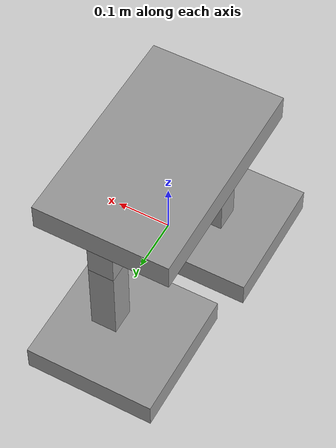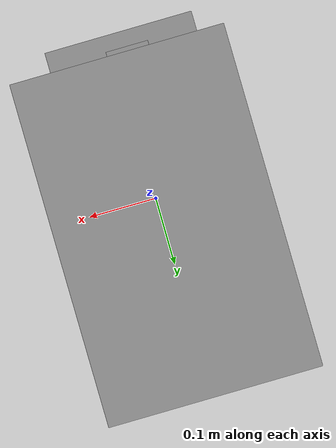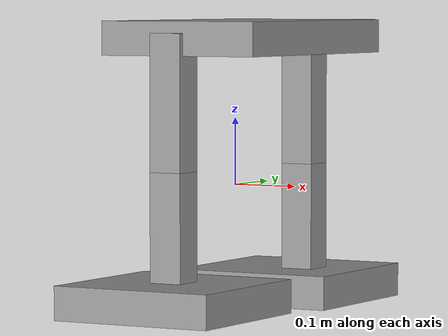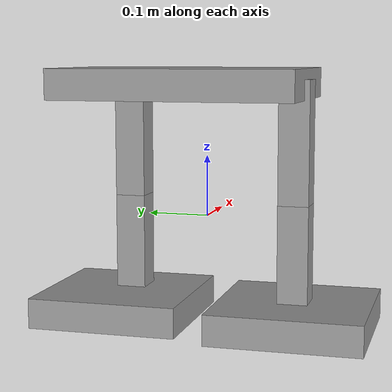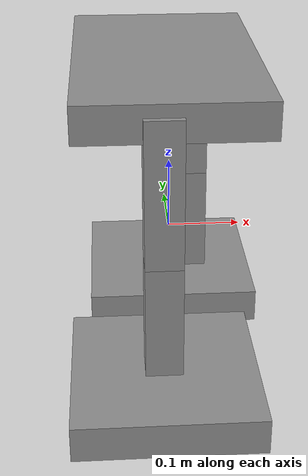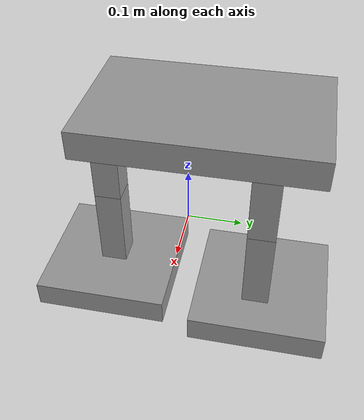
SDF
<?xml version='1.0'?>
<sdf version='1.6'>
  <model name='robot2'>
    <link name='link_0'>
      <inertial>
        <mass>1</mass>
        <inertia>
          <ixx>0.166667</ixx>
          <ixy>0</ixy>
          <ixz>0</ixz>
          <iyy>0.166667</iyy>
          <iyz>0</iyz>
          <izz>0.166667</izz>
        </inertia>
        <pose frame=''>0 0 0 0 -0 0</pose>
      </inertial>
      <pose frame=''>-0.015553 -0.153642 -0.158199 0 -0 0</pose>
      <gravity>1</gravity>
      <self_collide>0</self_collide>
      <kinematic>0</kinematic>
      <enable_wind>0</enable_wind>
      <visual name='visual'>
        <pose frame=''>0 0 0 0 -0 0</pose>
        <geometry>
          <box>
            <size>0.25 0.25 0.05</size>
          </box>
        </geometry>
        <material>
          <lighting>1</lighting>
          <script>
            <uri>file://media/materials/scripts/gazebo.material</uri>
            <name>Gazebo/Grey</name>
          </script>
          <shader type='vertex'>
            <normal_map>__default__</normal_map>
          </shader>
          <ambient>0.3 0.3 0.3 1</ambient>
          <diffuse>0.7 0.7 0.7 1</diffuse>
          <specular>0.01 0.01 0.01 1</specular>
          <emissive>0 0 0 1</emissive>
        </material>
        <transparency>0</transparency>
        <cast_shadows>1</cast_shadows>
      </visual>
      <collision name='collision'>
        <laser_retro>0</laser_retro>
        <max_contacts>10</max_contacts>
        <pose frame=''>0 0 0 0 -0 0</pose>
        <geometry>
          <box>
            <size>0.25 0.25 0.05</size>
          </box>
        </geometry>
        <surface>
          <friction>
            <ode>
              <mu>1</mu>
              <mu2>1</mu2>
              <fdir1>0 0 0</fdir1>
              <slip1>0</slip1>
              <slip2>0</slip2>
            </ode>
            <torsional>
              <coefficient>1</coefficient>
              <patch_radius>0</patch_radius>
              <surface_radius>0</surface_radius>
              <use_patch_radius>1</use_patch_radius>
              <ode>
                <slip>0</slip>
              </ode>
            </torsional>
          </friction>
          <bounce>
            <restitution_coefficient>0</restitution_coefficient>
            <threshold>1e+06</threshold>
          </bounce>
          <contact>
            <collide_without_contact>0</collide_without_contact>
            <collide_without_contact_bitmask>1</collide_without_contact_bitmask>
            <collide_bitmask>1</collide_bitmask>
            <ode>
              <soft_cfm>0</soft_cfm>
              <soft_erp>0.2</soft_erp>
              <kp>1e+13</kp>
              <kd>1</kd>
              <max_vel>0.01</max_vel>
              <min_depth>0</min_depth>
            </ode>
            <bullet>
              <split_impulse>1</split_impulse>
              <split_impulse_penetration_threshold>-0.01</split_impulse_penetration_threshold>
              <soft_cfm>0</soft_cfm>
              <soft_erp>0.2</soft_erp>
              <kp>1e+13</kp>
              <kd>1</kd>
            </bullet>
          </contact>
        </surface>
      </collision>
    </link>
    <link name='link_0_clone'>
      <inertial>
        <mass>1</mass>
        <inertia>
          <ixx>0.166667</ixx>
          <ixy>0</ixy>
          <ixz>0</ixz>
          <iyy>0.166667</iyy>
          <iyz>0</iyz>
          <izz>0.166667</izz>
        </inertia>
        <pose frame=''>0 0 0 0 -0 0</pose>
      </inertial>
      <pose frame=''>0.010018 0.150043 -0.158199 0 -0 0</pose>
      <gravity>1</gravity>
      <self_collide>0</self_collide>
      <kinematic>0</kinematic>
      <enable_wind>0</enable_wind>
      <visual name='visual'>
        <pose frame=''>0 0 0 0 -0 0</pose>
        <geometry>
          <box>
            <size>0.25 0.25 0.05</size>
          </box>
        </geometry>
        <material>
          <lighting>1</lighting>
          <script>
            <uri>file://media/materials/scripts/gazebo.material</uri>
            <name>Gazebo/Grey</name>
          </script>
          <shader type='vertex'>
            <normal_map>__default__</normal_map>
          </shader>
          <ambient>0.3 0.3 0.3 1</ambient>
          <diffuse>0.7 0.7 0.7 1</diffuse>
          <specular>0.01 0.01 0.01 1</specular>
          <emissive>0 0 0 1</emissive>
        </material>
        <transparency>0</transparency>
        <cast_shadows>1</cast_shadows>
      </visual>
      <collision name='collision'>
        <laser_retro>0</laser_retro>
        <max_contacts>10</max_contacts>
        <pose frame=''>0 0 0 0 -0 0</pose>
        <geometry>
          <box>
            <size>0.25 0.25 0.05</size>
          </box>
        </geometry>
        <surface>
          <friction>
            <ode>
              <mu>1</mu>
              <mu2>1</mu2>
              <fdir1>0 0 0</fdir1>
              <slip1>0</slip1>
              <slip2>0</slip2>
            </ode>
            <torsional>
              <coefficient>1</coefficient>
              <patch_radius>0</patch_radius>
              <surface_radius>0</surface_radius>
              <use_patch_radius>1</use_patch_radius>
              <ode>
                <slip>0</slip>
              </ode>
            </torsional>
          </friction>
          <bounce>
            <restitution_coefficient>0</restitution_coefficient>
            <threshold>1e+06</threshold>
          </bounce>
          <contact>
            <collide_without_contact>0</collide_without_contact>
            <collide_without_contact_bitmask>1</collide_without_contact_bitmask>
            <collide_bitmask>1</collide_bitmask>
            <ode>
              <soft_cfm>0</soft_cfm>
              <soft_erp>0.2</soft_erp>
              <kp>1e+13</kp>
              <kd>1</kd>
              <max_vel>0.01</max_vel>
              <min_depth>0</min_depth>
            </ode>
            <bullet>
              <split_impulse>1</split_impulse>
              <split_impulse_penetration_threshold>-0.01</split_impulse_penetration_threshold>
              <soft_cfm>0</soft_cfm>
              <soft_erp>0.2</soft_erp>
              <kp>1e+13</kp>
              <kd>1</kd>
            </bullet>
          </contact>
        </surface>
      </collision>
    </link>
    <link name='link_0_clone_0'>
      <inertial>
        <mass>1</mass>
        <inertia>
          <ixx>0.166667</ixx>
          <ixy>0</ixy>
          <ixz>0</ixz>
          <iyy>0.166667</iyy>
          <iyz>0</iyz>
          <izz>0.166667</izz>
        </inertia>
        <pose frame=''>0 0 0 0 -0 0</pose>
      </inertial>
      <pose frame=''>-0.003333 0.032058 0.218539 0 -0 0</pose>
      <gravity>1</gravity>
      <self_collide>0</self_collide>
      <kinematic>0</kinematic>
      <enable_wind>0</enable_wind>
      <visual name='visual'>
        <pose frame=''>0 0 0 0 -0 0</pose>
        <geometry>
          <box>
            <size>0.25 0.4 0.05</size>
          </box>
        </geometry>
        <material>
          <lighting>1</lighting>
          <script>
            <uri>file://media/materials/scripts/gazebo.material</uri>
            <name>Gazebo/Grey</name>
          </script>
          <shader type='vertex'>
            <normal_map>__default__</normal_map>
          </shader>
          <ambient>0.3 0.3 0.3 1</ambient>
          <diffuse>0.7 0.7 0.7 1</diffuse>
          <specular>0.01 0.01 0.01 1</specular>
          <emissive>0 0 0 1</emissive>
        </material>
        <transparency>0</transparency>
        <cast_shadows>1</cast_shadows>
      </visual>
      <collision name='collision'>
        <laser_retro>0</laser_retro>
        <max_contacts>10</max_contacts>
        <pose frame=''>0 0 0 0 -0 0</pose>
        <geometry>
          <box>
            <size>0.25 0.4 0.05</size>
          </box>
        </geometry>
        <surface>
          <friction>
            <ode>
              <mu>1</mu>
              <mu2>1</mu2>
              <fdir1>0 0 0</fdir1>
              <slip1>0</slip1>
              <slip2>0</slip2>
            </ode>
            <torsional>
              <coefficient>1</coefficient>
              <patch_radius>0</patch_radius>
              <surface_radius>0</surface_radius>
              <use_patch_radius>1</use_patch_radius>
              <ode>
                <slip>0</slip>
              </ode>
            </torsional>
          </friction>
          <bounce>
            <restitution_coefficient>0</restitution_coefficient>
            <threshold>1e+06</threshold>
          </bounce>
          <contact>
            <collide_without_contact>0</collide_without_contact>
            <collide_without_contact_bitmask>1</collide_without_contact_bitmask>
            <collide_bitmask>1</collide_bitmask>
            <ode>
              <soft_cfm>0</soft_cfm>
              <soft_erp>0.2</soft_erp>
              <kp>1e+13</kp>
              <kd>1</kd>
              <max_vel>0.01</max_vel>
              <min_depth>0</min_depth>
            </ode>
            <bullet>
              <split_impulse>1</split_impulse>
              <split_impulse_penetration_threshold>-0.01</split_impulse_penetration_threshold>
              <soft_cfm>0</soft_cfm>
              <soft_erp>0.2</soft_erp>
              <kp>1e+13</kp>
              <kd>1</kd>
            </bullet>
          </contact>
        </surface>
      </collision>
    </link>
    <link name='link_1'>
      <inertial>
        <mass>1</mass>
        <inertia>
          <ixx>0.166667</ixx>
          <ixy>0</ixy>
          <ixz>0</ixz>
          <iyy>0.166667</iyy>
          <iyz>0</iyz>
          <izz>0.166667</izz>
        </inertia>
        <pose frame=''>0 0 0 0 -0 0</pose>
      </inertial>
      <pose frame=''>-0.016942 -0.151692 -0.07374 0 -0 0</pose>
      <gravity>1</gravity>
      <self_collide>0</self_collide>
      <kinematic>0</kinematic>
      <enable_wind>0</enable_wind>
      <visual name='visual'>
        <pose frame=''>0 0 0 0 -0 0</pose>
        <geometry>
          <box>
            <size>0.05 0.05 0.2</size>
          </box>
        </geometry>
        <material>
          <lighting>1</lighting>
          <script>
            <uri>file://media/materials/scripts/gazebo.material</uri>
            <name>Gazebo/Grey</name>
          </script>
          <shader type='vertex'>
            <normal_map>__default__</normal_map>
          </shader>
          <ambient>0.3 0.3 0.3 1</ambient>
          <diffuse>0.7 0.7 0.7 1</diffuse>
          <specular>0.01 0.01 0.01 1</specular>
          <emissive>0 0 0 1</emissive>
        </material>
        <transparency>0</transparency>
        <cast_shadows>1</cast_shadows>
      </visual>
      <collision name='collision'>
        <laser_retro>0</laser_retro>
        <max_contacts>10</max_contacts>
        <pose frame=''>0 0 0 0 -0 0</pose>
        <geometry>
          <box>
            <size>0.05 0.05 0.2</size>
          </box>
        </geometry>
        <surface>
          <friction>
            <ode>
              <mu>1</mu>
              <mu2>1</mu2>
              <fdir1>0 0 0</fdir1>
              <slip1>0</slip1>
              <slip2>0</slip2>
            </ode>
            <torsional>
              <coefficient>1</coefficient>
              <patch_radius>0</patch_radius>
              <surface_radius>0</surface_radius>
              <use_patch_radius>1</use_patch_radius>
              <ode>
                <slip>0</slip>
              </ode>
            </torsional>
          </friction>
          <bounce>
            <restitution_coefficient>0</restitution_coefficient>
            <threshold>1e+06</threshold>
          </bounce>
          <contact>
            <collide_without_contact>0</collide_without_contact>
            <collide_without_contact_bitmask>1</collide_without_contact_bitmask>
            <collide_bitmask>1</collide_bitmask>
            <ode>
              <soft_cfm>0</soft_cfm>
              <soft_erp>0.2</soft_erp>
              <kp>1e+13</kp>
              <kd>1</kd>
              <max_vel>0.01</max_vel>
              <min_depth>0</min_depth>
            </ode>
            <bullet>
              <split_impulse>1</split_impulse>
              <split_impulse_penetration_threshold>-0.01</split_impulse_penetration_threshold>
              <soft_cfm>0</soft_cfm>
              <soft_erp>0.2</soft_erp>
              <kp>1e+13</kp>
              <kd>1</kd>
            </bullet>
          </contact>
        </surface>
      </collision>
    </link>
    <link name='link_1_clone'>
      <inertial>
        <mass>1</mass>
        <inertia>
          <ixx>0.166667</ixx>
          <ixy>0</ixy>
          <ixz>0</ixz>
          <iyy>0.166667</iyy>
          <iyz>0</iyz>
          <izz>0.166667</izz>
        </inertia>
        <pose frame=''>0 0 0 0 -0 0</pose>
      </inertial>
      <pose frame=''>0.040952 0.141305 -0.07374 0 -0 0</pose>
      <gravity>1</gravity>
      <self_collide>0</self_collide>
      <kinematic>0</kinematic>
      <enable_wind>0</enable_wind>
      <visual name='visual'>
        <pose frame=''>0 0 0 0 -0 0</pose>
        <geometry>
          <box>
            <size>0.05 0.05 0.2</size>
          </box>
        </geometry>
        <material>
          <lighting>1</lighting>
          <script>
            <uri>file://media/materials/scripts/gazebo.material</uri>
            <name>Gazebo/Grey</name>
          </script>
          <shader type='vertex'>
            <normal_map>__default__</normal_map>
          </shader>
          <ambient>0.3 0.3 0.3 1</ambient>
          <diffuse>0.7 0.7 0.7 1</diffuse>
          <specular>0.01 0.01 0.01 1</specular>
          <emissive>0 0 0 1</emissive>
        </material>
        <transparency>0</transparency>
        <cast_shadows>1</cast_shadows>
      </visual>
      <collision name='collision'>
        <laser_retro>0</laser_retro>
        <max_contacts>10</max_contacts>
        <pose frame=''>0 0 0 0 -0 0</pose>
        <geometry>
          <box>
            <size>0.05 0.05 0.2</size>
          </box>
        </geometry>
        <surface>
          <friction>
            <ode>
              <mu>1</mu>
              <mu2>1</mu2>
              <fdir1>0 0 0</fdir1>
              <slip1>0</slip1>
              <slip2>0</slip2>
            </ode>
            <torsional>
              <coefficient>1</coefficient>
              <patch_radius>0</patch_radius>
              <surface_radius>0</surface_radius>
              <use_patch_radius>1</use_patch_radius>
              <ode>
                <slip>0</slip>
              </ode>
            </torsional>
          </friction>
          <bounce>
            <restitution_coefficient>0</restitution_coefficient>
            <threshold>1e+06</threshold>
          </bounce>
          <contact>
            <collide_without_contact>0</collide_without_contact>
            <collide_without_contact_bitmask>1</collide_without_contact_bitmask>
            <collide_bitmask>1</collide_bitmask>
            <ode>
              <soft_cfm>0</soft_cfm>
              <soft_erp>0.2</soft_erp>
              <kp>1e+13</kp>
              <kd>1</kd>
              <max_vel>0.01</max_vel>
              <min_depth>0</min_depth>
            </ode>
            <bullet>
              <split_impulse>1</split_impulse>
              <split_impulse_penetration_threshold>-0.01</split_impulse_penetration_threshold>
              <soft_cfm>0</soft_cfm>
              <soft_erp>0.2</soft_erp>
              <kp>1e+13</kp>
              <kd>1</kd>
            </bullet>
          </contact>
        </surface>
      </collision>
    </link>
    <link name='link_2'>
      <inertial>
        <mass>1</mass>
        <inertia>
          <ixx>0.166667</ixx>
          <ixy>0</ixy>
          <ixz>0</ixz>
          <iyy>0.166667</iyy>
          <iyz>0</iyz>
          <izz>0.166667</izz>
        </inertia>
        <pose frame=''>0 0 0 0 -0 0</pose>
      </inertial>
      <pose frame=''>-0.016942 -0.151692 0.12626 0 -0 0</pose>
      <gravity>1</gravity>
      <self_collide>0</self_collide>
      <kinematic>0</kinematic>
      <enable_wind>0</enable_wind>
      <visual name='visual'>
        <pose frame=''>0 0 0 0 -0 0</pose>
        <geometry>
          <box>
            <size>0.05 0.05 0.2</size>
          </box>
        </geometry>
        <material>
          <lighting>1</lighting>
          <script>
            <uri>file://media/materials/scripts/gazebo.material</uri>
            <name>Gazebo/Grey</name>
          </script>
          <shader type='vertex'>
            <normal_map>__default__</normal_map>
          </shader>
          <ambient>0.3 0.3 0.3 1</ambient>
          <diffuse>0.7 0.7 0.7 1</diffuse>
          <specular>0.01 0.01 0.01 1</specular>
          <emissive>0 0 0 1</emissive>
        </material>
        <transparency>0</transparency>
        <cast_shadows>1</cast_shadows>
      </visual>
      <collision name='collision'>
        <laser_retro>0</laser_retro>
        <max_contacts>10</max_contacts>
        <pose frame=''>0 0 0 0 -0 0</pose>
        <geometry>
          <box>
            <size>0.05 0.05 0.2</size>
          </box>
        </geometry>
        <surface>
          <friction>
            <ode>
              <mu>1</mu>
              <mu2>1</mu2>
              <fdir1>0 0 0</fdir1>
              <slip1>0</slip1>
              <slip2>0</slip2>
            </ode>
            <torsional>
              <coefficient>1</coefficient>
              <patch_radius>0</patch_radius>
              <surface_radius>0</surface_radius>
              <use_patch_radius>1</use_patch_radius>
              <ode>
                <slip>0</slip>
              </ode>
            </torsional>
          </friction>
          <bounce>
            <restitution_coefficient>0</restitution_coefficient>
            <threshold>1e+06</threshold>
          </bounce>
          <contact>
            <collide_without_contact>0</collide_without_contact>
            <collide_without_contact_bitmask>1</collide_without_contact_bitmask>
            <collide_bitmask>1</collide_bitmask>
            <ode>
              <soft_cfm>0</soft_cfm>
              <soft_erp>0.2</soft_erp>
              <kp>1e+13</kp>
              <kd>1</kd>
              <max_vel>0.01</max_vel>
              <min_depth>0</min_depth>
            </ode>
            <bullet>
              <split_impulse>1</split_impulse>
              <split_impulse_penetration_threshold>-0.01</split_impulse_penetration_threshold>
              <soft_cfm>0</soft_cfm>
              <soft_erp>0.2</soft_erp>
              <kp>1e+13</kp>
              <kd>1</kd>
            </bullet>
          </contact>
        </surface>
      </collision>
    </link>
    <link name='link_2_clone'>
      <inertial>
        <mass>1</mass>
        <inertia>
          <ixx>0.166667</ixx>
          <ixy>0</ixy>
          <ixz>0</ixz>
          <iyy>0.166667</iyy>
          <iyz>0</iyz>
          <izz>0.166667</izz>
        </inertia>
        <pose frame=''>0 0 0 0 -0 0</pose>
      </inertial>
      <pose frame=''>0.040952 0.141305 0.12626 0 -0 0</pose>
      <gravity>1</gravity>
      <self_collide>0</self_collide>
      <kinematic>0</kinematic>
      <enable_wind>0</enable_wind>
      <visual name='visual'>
        <pose frame=''>0 0 0 0 -0 0</pose>
        <geometry>
          <box>
            <size>0.05 0.05 0.2</size>
          </box>
        </geometry>
        <material>
          <lighting>1</lighting>
          <script>
            <uri>file://media/materials/scripts/gazebo.material</uri>
            <name>Gazebo/Grey</name>
          </script>
          <shader type='vertex'>
            <normal_map>__default__</normal_map>
          </shader>
          <ambient>0.3 0.3 0.3 1</ambient>
          <diffuse>0.7 0.7 0.7 1</diffuse>
          <specular>0.01 0.01 0.01 1</specular>
          <emissive>0 0 0 1</emissive>
        </material>
        <transparency>0</transparency>
        <cast_shadows>1</cast_shadows>
      </visual>
      <collision name='collision'>
        <laser_retro>0</laser_retro>
        <max_contacts>10</max_contacts>
        <pose frame=''>0 0 0 0 -0 0</pose>
        <geometry>
          <box>
            <size>0.05 0.05 0.2</size>
          </box>
        </geometry>
        <surface>
          <friction>
            <ode>
              <mu>1</mu>
              <mu2>1</mu2>
              <fdir1>0 0 0</fdir1>
              <slip1>0</slip1>
              <slip2>0</slip2>
            </ode>
            <torsional>
              <coefficient>1</coefficient>
              <patch_radius>0</patch_radius>
              <surface_radius>0</surface_radius>
              <use_patch_radius>1</use_patch_radius>
              <ode>
                <slip>0</slip>
              </ode>
            </torsional>
          </friction>
          <bounce>
            <restitution_coefficient>0</restitution_coefficient>
            <threshold>1e+06</threshold>
          </bounce>
          <contact>
            <collide_without_contact>0</collide_without_contact>
            <collide_without_contact_bitmask>1</collide_without_contact_bitmask>
            <collide_bitmask>1</collide_bitmask>
            <ode>
              <soft_cfm>0</soft_cfm>
              <soft_erp>0.2</soft_erp>
              <kp>1e+13</kp>
              <kd>1</kd>
              <max_vel>0.01</max_vel>
              <min_depth>0</min_depth>
            </ode>
            <bullet>
              <split_impulse>1</split_impulse>
              <split_impulse_penetration_threshold>-0.01</split_impulse_penetration_threshold>
              <soft_cfm>0</soft_cfm>
              <soft_erp>0.2</soft_erp>
              <kp>1e+13</kp>
              <kd>1</kd>
            </bullet>
          </contact>
        </surface>
      </collision>
    </link>
    <joint name='link_0_clone_0_JOINT_4' type='revolute'>
      <parent>link_0_clone_0</parent>
      <child>link_2_clone</child>
      <pose frame=''>0 0 0 0 -0 0</pose>
      <axis>
        <xyz>1 0 0</xyz>
        <use_parent_model_frame>0</use_parent_model_frame>
        <limit>
          <lower>-1.79769e+308</lower>
          <upper>1.79769e+308</upper>
          <effort>-1</effort>
          <velocity>-1</velocity>
        </limit>
        <dynamics>
          <spring_reference>0</spring_reference>
          <spring_stiffness>0</spring_stiffness>
          <damping>0</damping>
        </dynamics>
      </axis>
      <physics>
        <ode>
          <limit>
            <cfm>0</cfm>
            <erp>0.2</erp>
          </limit>
          <suspension>
            <cfm>0</cfm>
            <erp>0.2</erp>
          </suspension>
        </ode>
      </physics>
    </joint>
    <joint name='link_0_clone_0_JOINT_5' type='revolute'>
      <parent>link_0_clone_0</parent>
      <child>link_2</child>
      <pose frame=''>0 0 0 0 -0 0</pose>
      <axis>
        <xyz>1 0 0</xyz>
        <use_parent_model_frame>0</use_parent_model_frame>
        <limit>
          <lower>-1.79769e+308</lower>
          <upper>1.79769e+308</upper>
          <effort>-1</effort>
          <velocity>-1</velocity>
        </limit>
        <dynamics>
          <spring_reference>0</spring_reference>
          <spring_stiffness>0</spring_stiffness>
          <damping>0</damping>
        </dynamics>
      </axis>
      <physics>
        <ode>
          <limit>
            <cfm>0</cfm>
            <erp>0.2</erp>
          </limit>
          <suspension>
            <cfm>0</cfm>
            <erp>0.2</erp>
          </suspension>
        </ode>
      </physics>
    </joint>
    <joint name='link_1_JOINT_0' type='fixed'>
      <parent>link_1</parent>
      <child>link_0</child>
      <pose frame=''>0 0 0 0 -0 0</pose>
      <physics>
        <ode>
          <limit>
            <cfm>0</cfm>
            <erp>0.2</erp>
          </limit>
          <suspension>
            <cfm>0</cfm>
            <erp>0.2</erp>
          </suspension>
        </ode>
      </physics>
    </joint>
    <joint name='link_1_clone_JOINT_2' type='fixed'>
      <parent>link_1_clone</parent>
      <child>link_0_clone</child>
      <pose frame=''>0 0 0 0 -0 0</pose>
      <physics>
        <ode>
          <limit>
            <cfm>0</cfm>
            <erp>0.2</erp>
          </limit>
          <suspension>
            <cfm>0</cfm>
            <erp>0.2</erp>
          </suspension>
        </ode>
      </physics>
    </joint>
    <joint name='link_2_JOINT_1' type='revolute'>
      <parent>link_2</parent>
      <child>link_1</child>
      <pose frame=''>0 0 0.2 0 -0 0</pose>
      <axis>
        <xyz>1 0 0</xyz>
        <use_parent_model_frame>0</use_parent_model_frame>
        <limit>
          <lower>-1.79769e+308</lower>
          <upper>1.79769e+308</upper>
          <effort>-1</effort>
          <velocity>-1</velocity>
        </limit>
        <dynamics>
          <spring_reference>0</spring_reference>
          <spring_stiffness>0</spring_stiffness>
          <damping>0</damping>
        </dynamics>
      </axis>
      <physics>
        <ode>
          <limit>
            <cfm>0</cfm>
            <erp>0.2</erp>
          </limit>
          <suspension>
            <cfm>0</cfm>
            <erp>0.2</erp>
          </suspension>
        </ode>
      </physics>
    </joint>
    <joint name='link_2_clone_JOINT_3' type='revolute'>
      <parent>link_2_clone</parent>
      <child>link_1_clone</child>
      <pose frame=''>0 0 0 0 -0 0</pose>
      <axis>
        <xyz>1 0 0</xyz>
        <use_parent_model_frame>0</use_parent_model_frame>
        <limit>
          <lower>-1.79769e+308</lower>
          <upper>1.79769e+308</upper>
          <effort>-1</effort>
          <velocity>-1</velocity>
        </limit>
        <dynamics>
          <spring_reference>0</spring_reference>
          <spring_stiffness>0</spring_stiffness>
          <damping>0</damping>
        </dynamics>
      </axis>
      <physics>
        <ode>
          <limit>
            <cfm>0</cfm>
            <erp>0.2</erp>
          </limit>
          <suspension>
            <cfm>0</cfm>
            <erp>0.2</erp>
          </suspension>
        </ode>
      </physics>
    </joint>
    <static>0</static>
    <allow_auto_disable>1</allow_auto_disable>
  </model>
</sdf>
